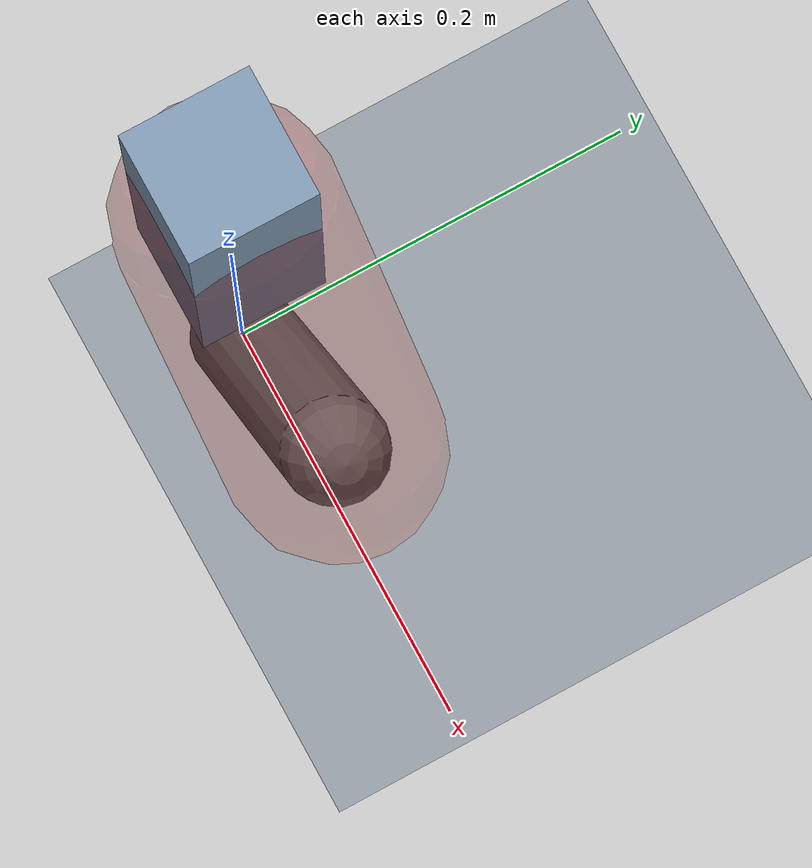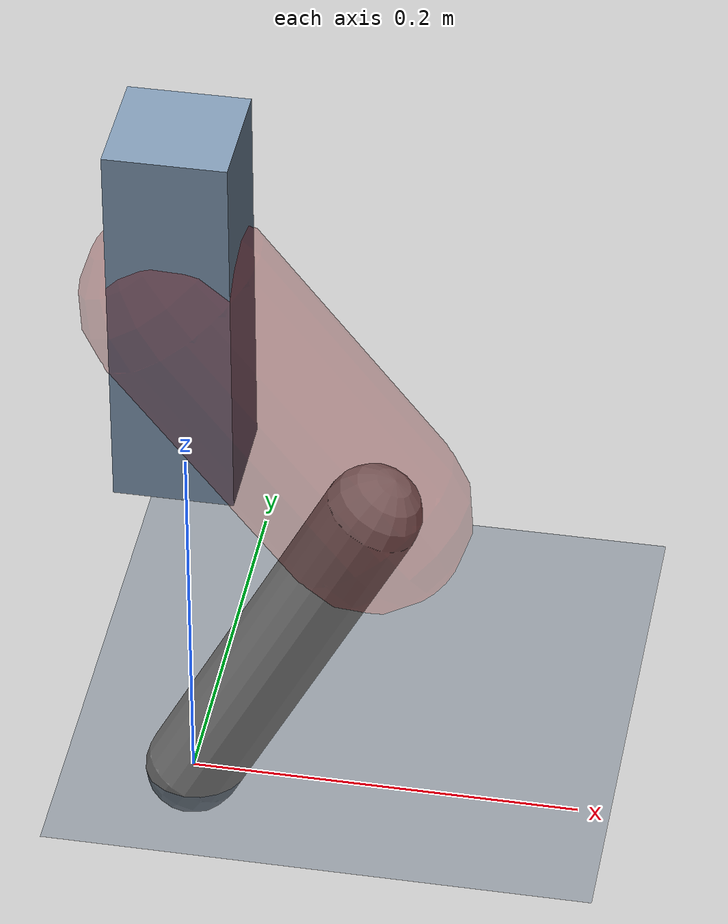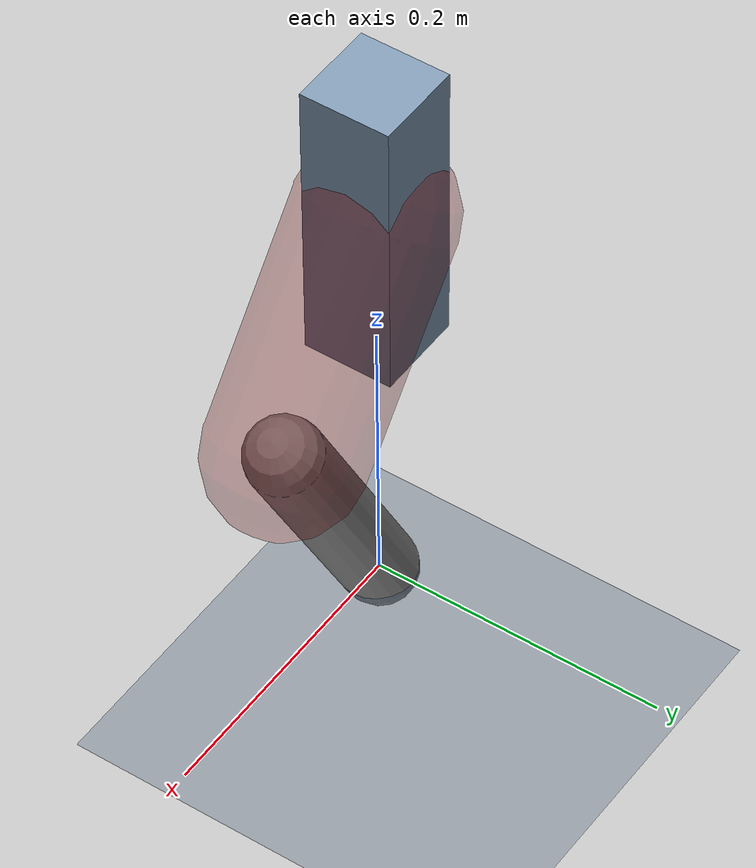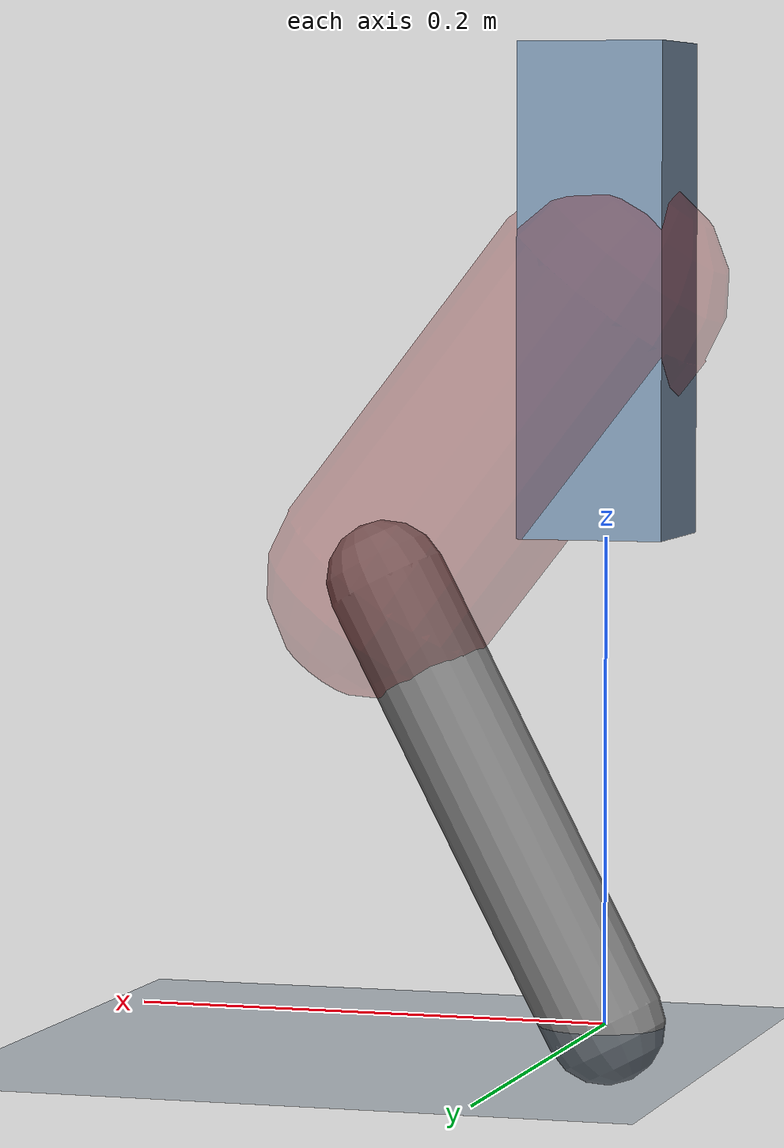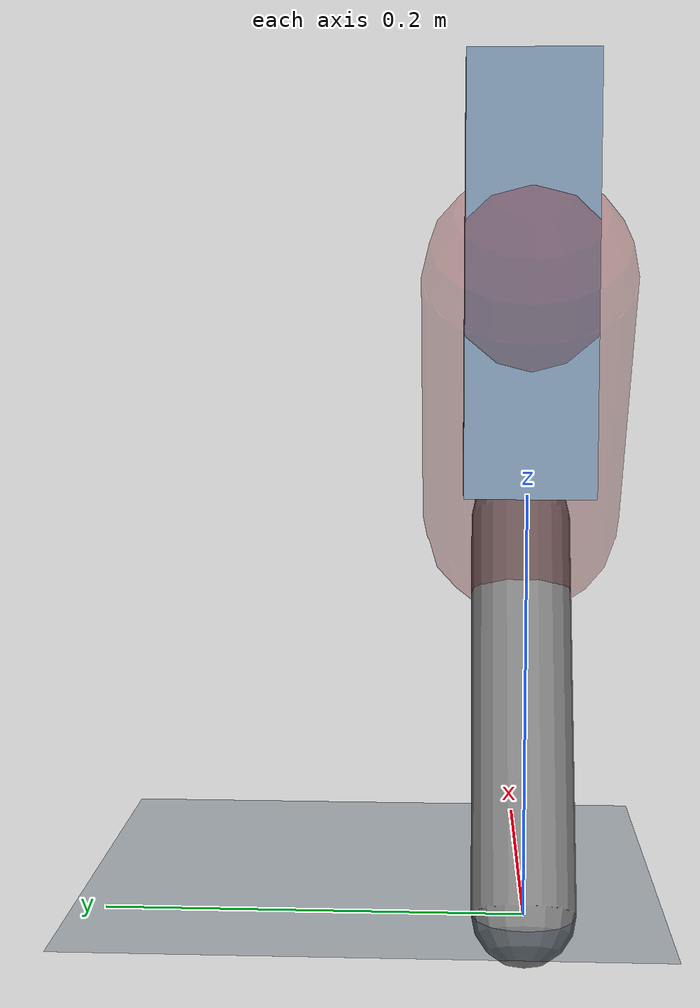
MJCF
<mujoco model="Hopper2D">
	<compiler inertiafromgeom="true" angle="radian" />
	<option timestep="0.001" integrator="implicit" cone="elliptic" solver="Newton" tolerance="1e-10" />

	<default>
		<geom contype="1" conaffinity="1" condim="3" friction="2 0.005 0.0001" solref="0.005 1" />
		<joint limited="true" damping="0.1" />
	</default>

	<asset>
		<texture name="skybox" type="skybox" builtin="gradient" rgb1=".4 .6 .8" rgb2="0 0 0" width="800" height="800" />
		<texture name="grid" type="2d" builtin="checker" rgb1=".1 .2 .3" rgb2=".2 .3 .4" width="300" height="300" mark="edge" markrgb=".2 .3 .4" />
		<material name="ground" texture="grid" texrepeat="1 1" texuniform="true" reflectance="0.1" />
		<material name="leg" rgba="0.5 0.6 0.7 1" />
	</asset>

	<worldbody>

		<geom name="floor" type="plane" size="5 5 0.25" material="ground" />

		<light directional="false" diffuse="0.8 0.8 0.8" specular="0.3 0.3 0.3" pos="0 0 2" dir="0 0 -1" />
		<light mode="targetbodycom" target="base" directional="false" diffuse="0.8 0.8 0.8" specular="0.3 0.3 0.3" pos="0 0 2" dir="0 0 -1" />

		<camera name="fixed" pos="0 -2 1" xyaxes="1 0 0 0 0 1" />
		<camera name="tracking" mode="trackcom" pos="0 -3 1" />

		<body name="root" pos="0 0 0.3007680719294706">
			<joint name="slide_x" type="slide" axis="1 0 0" range="-100 100" />
			<joint name="slide_z" type="slide" axis="0 0 1" range="0 10" />

			<body name="base" pos="0 0 0">
				<geom name="torso" type="box" size="0.03 0.03 0.1" mass="3.207" material="leg" />

				<body name="link1" pos="0 0 0" euler="0 0.908403495076664 0">
					<joint type="hinge" axis="0 -1 0" pos="0 0 0" name="hinge1" limited="true" range="-3.14 3.14" stiffness="0" damping="0.1" />
					<geom name="thigh" type="capsule" fromto="0 0 0 0.15228492910879893 0 0" size="0.05" rgba="0.5 0 0 0.3" mass="0.6138838298611174" />

					<body name="link2" pos="0.15228492910879893 0 0" euler="0 1.14059705438661 0">
						<joint type="hinge" axis="0 -1 0" pos="0 0 0" name="hinge2" limited="true" range="-3.14 3.14" stiffness="0" damping="0.1" />
						<geom name="shank" type="capsule" fromto="0 0 0 0.20351801216485993 0 0" size="0.025" mass="0.40386621094837394" />

					</body>
				</body>
			</body>
		</body>
	</worldbody>

	<actuator>
		<motor name="torque1" joint="hinge1" ctrlrange="-133.27889398050226 133.27889398050226" ctrllimited="true" gear="1" />
		<motor name="torque2" joint="hinge2" ctrlrange="-107.39046282959538 107.39046282959538" ctrllimited="true" gear="1" />
	</actuator>
</mujoco>
